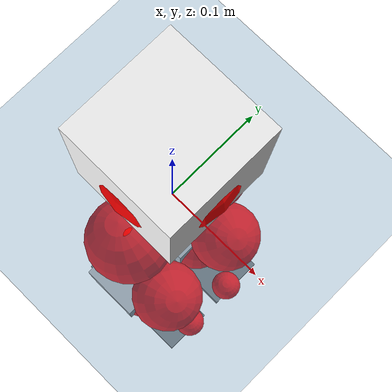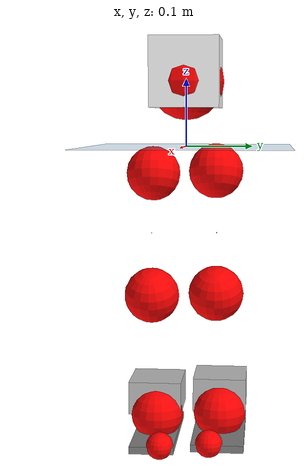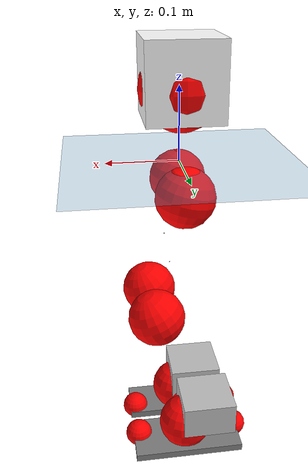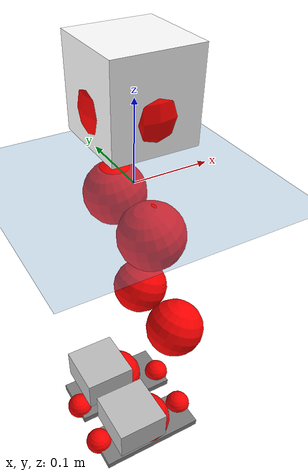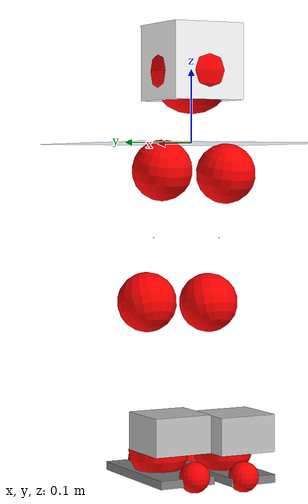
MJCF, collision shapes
<mujoco model="pi_12dof_release_v1">
  <compiler angle="radian" assetdir="assets" balanceinertia="true" inertiafromgeom="false"/>

  <option timestep="0.005" density="1.2" viscosity="2e-05"/>

  <size nkey="1"/>

  <visual>
    <quality shadowsize="8192"/>
    <map shadowclip="0.5"/>
  </visual>

  <default>
    <default class="/">
      <joint armature="0.01" damping="0.01" frictionloss="0.01"/>
      <geom contype="0" conaffinity="0" group="1" solref="-1000 -80"/>
      <site size="0.01 0.005 0.005" group="5"/>
      <general forcelimited="true" biastype="affine" gainprm="20" biasprm="0 -20 -0.5"/>
      <default class="foot">
        <geom size="0.0845 0.036 0.005" type="box" condim="6" group="4" priority="1" friction="0.9 0.2 0.2" solimp="0.015 1 0.005"/>
      </default>
      <default class="reward_collision_sphere">
        <geom group="5" rgba="1 0 0 1"/>
      </default>
    </default>
  </default>

  <asset>
    <texture type="skybox" colorspace="auto" name="//unnamed_texture_0" builtin="gradient" rgb1="0.95 0.95 0.95" rgb2="0.95 0.95 0.95" width="100" height="600"/>
    <texture type="2d" colorspace="auto" name="texplane" builtin="checker" rgb1="0.345 0.575 0.748" rgb2="0.345 0.575 0.748" markrgb="1 1 1" width="512" height="512"/>
    <material name="MatPlane" class="/" texture="texplane" texuniform="true" texrepeat="2 2" specular="0.9"/>
    <mesh name="baselink_1" class="/" file="baselink_1.STL"/>
    <mesh name="r_hip_pitch_link" class="/" file="r_hip_pitch_link.STL"/>
    <mesh name="r_hip_roll_link" class="/" file="r_hip_roll_link.STL"/>
    <mesh name="r_thigh_link" class="/" file="r_thigh_link.STL"/>
    <mesh name="r_calf_link" class="/" file="r_calf_link.STL"/>
    <mesh name="r_ankle_pitch_link" class="/" file="r_ankle_pitch_link.STL"/>
    <mesh name="r_ankle_roll_link" class="/" file="r_ankle_roll_link.STL"/>
    <mesh name="l_hip_pitch_link" class="/" file="l_hip_pitch_link.STL"/>
    <mesh name="l_hip_roll_link" class="/" file="l_hip_roll_link.STL"/>
    <mesh name="l_thigh_link" class="/" file="l_thigh_link.STL"/>
    <mesh name="l_calf_link" class="/" file="l_calf_link.STL"/>
    <mesh name="l_ankle_pitch_link" class="/" file="l_ankle_pitch_link.STL"/>
    <mesh name="l_ankle_roll_link" class="/" file="l_ankle_roll_link.STL"/>
  </asset>

  <worldbody>
    <geom name="floor" class="/" size="100 100 0.125" type="plane" group="0" material="MatPlane"/>
    <light name="toplight_shadow" class="/" pos="0 0 5" dir="0.0990148 0.0990148 -0.990148" type="directional" ambient="0.04 0.04 0.04" diffuse="0.55 0.55 0.55" specular="0.12 0.12 0.12"/>
    <light name="toplight_fill" class="/" pos="0 0 5" dir="0.0990148 0.0990148 -0.990148" type="directional" castshadow="false" ambient="0.04 0.04 0.04" diffuse="0.3 0.3 0.3" specular="0.08 0.08 0.08"/>
    <body name="trunk" pos="-0.00248235 0.000168889 0.00269307" quat="0.999999 -0.000793388 0.000965716 -0.000182494">
      <inertial pos="0.00593463 0.000566964 0.0511547" quat="0.693647 0.00703145 0.020149 0.719999" mass="2.29722" diaginertia="0.0191487 0.000788 0.0177261"/>
      <joint name="//unnamed_joint_0" type="free"/>
      <geom name="//unnamed_geom_1" class="/" type="mesh" density="0" rgba="1 1 1 1" mesh="baselink_1"/>
      <geom name="//unnamed_geom_2" class="/" size="0.0514469 0.0514469 0.0514469" pos="0 0 0.106366" type="box" rgba="1 1 1 1"/>
      <geom name="//unnamed_geom_3" class="reward_collision_sphere" size="0.0565916" pos="0 0 0.0930702"/>
      <site name="imu" class="/" pos="-0.00756071 0.000645978 0.00734052" size="0.0102894"/>
      <camera name="track" class="/" pos="0 -1.22557 0" quat="0.707107 0.707107 0 0" mode="trackcom"/>
      <camera name="ego_camera" class="/" pos="0.0858339 0 0.239323" quat="-0.5 -0.5 0.5 0.5"/>
      <body name="r_hip_pitch_link" pos="-0.000295856 -0.0141736 -0.0457359" quat="0.992189 0.000113665 -0.12474 0.00012709">
        <inertial pos="0.00164649 -0.0349714 9.3259e-05" quat="-0.0181311 0.705429 -0.0264389 0.708056" mass="0.430806" diaginertia="0.000218971 8.79753e-06 0.000360446"/>
        <joint name="r_hip_pitch_joint" class="/" pos="0 0 0" axis="-0.00334413 -0.999994 0.0013002" range="-1.73614 1.29035" armature="0.010521" damping="0.0138414" frictionloss="0.00895211"/>
        <geom name="//unnamed_geom_4" class="/" type="mesh" density="0" rgba="0.75294 0.75294 0.75294 1" mesh="r_hip_pitch_link"/>
        <geom name="//unnamed_geom_5" class="/" size="0.000514469 0.000514469 0.000514469" type="box" rgba="0.75294 0.75294 0.75294 1"/>
        <body name="r_hip_roll_link" pos="-0.00187699 -0.036688 0.0020727" quat="1 2.19797e-05 0.000537976 3.29982e-05">
          <inertial pos="-0.000877198 -3.40078e-05 -0.0794446" quat="0.707197 -0.0797302 -0.0831655 0.697567" mass="0.415508" diaginertia="0.000649363 2.46879e-05 0.000548676"/>
          <joint name="r_hip_roll_joint" class="/" pos="0 0 0" axis="-0.999991 0.00375808 0.00208912" range="-0.0980933 0.491125" armature="0.00950946" damping="0.0190703" frictionloss="0.00932966"/>
          <geom name="//unnamed_geom_6" class="/" type="mesh" density="0" rgba="0.75294 0.75294 0.75294 1" mesh="r_hip_roll_link"/>
          <geom name="//unnamed_geom_7" class="/" size="0.000514469 0.000514469 0.000514469" type="box" rgba="0.75294 0.75294 0.75294 1"/>
          <geom name="//unnamed_geom_8" class="reward_collision_sphere" size="0.0411575"/>
          <body name="r_thigh_link" pos="-0.00210791 -0.000773632 -0.0912294" quat="0.999999 0.000725903 -0.000614164 -0.000721344">
            <inertial pos="-0.000455339 0.00360778 -0.0657177" quat="0.735681 0.677316 -1.02923e-05 0.00397937" mass="0.11913" diaginertia="0.000240231 8.05248e-06 0.000241513"/>
            <joint name="r_thigh_joint" class="/" pos="0 0 0" axis="0.0024234 0.00234382 -0.999994" stiffness="0.00493508" range="-0.32105 0.539977" armature="0.0093409" damping="0" frictionloss="0.011479"/>
            <geom name="//unnamed_geom_9" class="/" type="mesh" density="0" rgba="0.75294 0.75294 0.75294 1" mesh="r_thigh_link"/>
            <geom name="//unnamed_geom_10" class="/" size="0.000514469 0.000514469 0.000514469" type="box" rgba="0.75294 0.75294 0.75294 1"/>
            <body name="r_calf_link" pos="0.00198326 0.00311746 -0.0948296" quat="0.947735 -0.000192064 0.319058 -2.69773e-05">
              <inertial pos="-0.00202763 0.00265291 -0.0942485" quat="0.999853 -0.00270684 -0.00202834 0.0168182" mass="0.903098" diaginertia="0.00703717 0.000303419 0.00073449"/>
              <joint name="r_calf_joint" class="/" pos="0 0 0" axis="-0.00380289 -0.999993 0.000353945" stiffness="0.00741915" range="-1.65209 0.700273" armature="0.00894886" damping="0" frictionloss="0.0103991"/>
              <geom name="//unnamed_geom_11" class="/" type="mesh" density="0" rgba="0.75294 0.75294 0.75294 1" mesh="r_calf_link"/>
              <geom name="//unnamed_geom_12" class="/" size="0.000514469 0.000514469 0.000514469" type="box" rgba="0.75294 0.75294 0.75294 1"/>
              <geom name="//unnamed_geom_13" class="reward_collision_sphere" size="0.0411575"/>
              <body name="r_ankle_pitch_link" pos="0.00143386 -0.00110846 -0.185871" quat="0.980058 -5.50423e-05 -0.198711 -9.97964e-05">
                <inertial pos="0.00389734 -1.63481e-06 -0.00217554" quat="0.0014361 0.700918 -0.00557216 0.713219" mass="0.187759" diaginertia="0.000577423 1.87303e-05 0.000476109"/>
                <joint name="r_ankle_pitch_joint" class="/" pos="0 0 0" axis="0.00343236 -0.999981 0.00515436" range="-1.3127 0.528921" armature="0.0111322" damping="0.00860027" frictionloss="0.00998742"/>
                <geom name="//unnamed_geom_14" class="/" type="mesh" density="0" rgba="0.75294 0.75294 0.75294 1" mesh="r_ankle_pitch_link"/>
                <geom name="//unnamed_geom_15" class="/" size="0.0401286 0.0411575 0.0257234" type="box" rgba="0.75294 0.75294 0.75294 1"/>
                <body name="r_ankle_roll_link" pos="0.0844711 0.00270908 -9.19122e-08" quat="1 0.000607672 0.000594029 0.000391708">
                  <inertial pos="-0.0278544 0.00028567 -0.0182362" quat="0.554796 0.440073 0.436159 0.55525" mass="0.58107" diaginertia="0.00230503 8.67252e-05 0.00117639"/>
                  <joint name="r_ankle_roll_joint" class="/" pos="0 0 0" axis="-0.999937 -0.00265397 -0.0108898" range="-0.12328 0.128988" armature="0.00934652" damping="0.00340091" frictionloss="0.0115818"/>
                  <geom name="//unnamed_geom_16" class="/" type="mesh" density="0" rgba="0.75294 0.75294 0.75294 1" mesh="r_ankle_roll_link"/>
                  <geom name="//unnamed_geom_17" class="/" type="mesh" rgba="0.75294 0.75294 0.75294 1" mesh="r_ankle_roll_link"/>
                  <geom name="right_foot" class="foot" size="0.0843512 0.0335224 0.00560395" pos="-0.058367 0 -0.0585013"/>
                  <geom name="//unnamed_geom_19" class="reward_collision_sphere" size="0.0411575" pos="-0.0572226 0 -0.0265915"/>
                  <geom name="//unnamed_geom_20" class="reward_collision_sphere" size="0.0205788" pos="0.0171668 0.0122557 -0.053183"/>
                  <geom name="//unnamed_geom_21" class="reward_collision_sphere" size="0.0205788" pos="-0.137334 0.0122557 -0.053183"/>
                  <site name="right_foot" class="foot" pos="-0.058367 0 -0.0585013" size="0.0102894"/>
                </body>
              </body>
            </body>
          </body>
        </body>
      </body>
      <body name="l_hip_pitch_link" pos="-0.00117707 0.0133376 -0.0425287" quat="0.992188 3.2784e-05 -0.124753 8.37564e-05">
        <inertial pos="0.00111858 0.0342519 0.00186178" quat="-0.0384706 0.705145 0.0286776 0.707438" mass="0.4153" diaginertia="0.000235754 8.62602e-06 0.000397914"/>
        <joint name="l_hip_pitch_joint" class="/" pos="0 0 0" axis="-0.000700837 0.999983 -0.00578285" range="-1.20624 1.74403" armature="0.009987" damping="0.0192406" frictionloss="0.00959631"/>
        <geom name="//unnamed_geom_22" class="/" type="mesh" density="0" rgba="0.75294 0.75294 0.75294 1" mesh="l_hip_pitch_link"/>
        <geom name="//unnamed_geom_23" class="/" size="0.000514469 0.000514469 0.000514469" type="box" rgba="0.75294 0.75294 0.75294 1"/>
        <body name="l_hip_roll_link" pos="0.00262504 0.0318651 0.00231766" quat="0.999999 -0.00027337 0.000742575 0.00102194">
          <inertial pos="0.000829026 0.00272934 -0.0787951" quat="0.701766 -0.0748539 -0.0754709 0.704433" mass="0.403792" diaginertia="0.000666973 2.39879e-05 0.000544411"/>
          <joint name="l_hip_roll_joint" class="/" pos="0 0 0" axis="-0.999858 0.0163958 -0.00386874" stiffness="0.00104422" range="-0.447839 0.0662857" armature="0.00895888" damping="0.00986262" frictionloss="0.00925857"/>
          <geom name="//unnamed_geom_24" class="/" type="mesh" density="0" rgba="0.75294 0.75294 0.75294 1" mesh="l_hip_roll_link"/>
          <geom name="//unnamed_geom_25" class="/" size="0.000514469 0.000514469 0.000514469" type="box" rgba="0.75294 0.75294 0.75294 1"/>
          <geom name="//unnamed_geom_26" class="reward_collision_sphere" size="0.0411575"/>
          <body name="l_thigh_link" pos="-0.00089995 0.0022543 -0.0940968" quat="1 0.000218507 -0.000175972 3.39045e-05">
            <inertial pos="0.00241941 -0.00160478 -0.0661491" quat="0.676623 0.736286 -0.00794343 0.00096812" mass="0.11708" diaginertia="0.000231498 7.7903e-06 0.000238438"/>
            <joint name="l_thigh_joint" class="/" pos="0 0 0" axis="0.000739169 1.8609e-05 -1" stiffness="0.00190265" range="-0.56488 0.262344" armature="0.0115628" damping="0.00183618" frictionloss="0.0098187"/>
            <geom name="//unnamed_geom_27" class="/" type="mesh" density="0" rgba="0.75294 0.75294 0.75294 1" mesh="l_thigh_link"/>
            <geom name="//unnamed_geom_28" class="/" size="0.000514469 0.000514469 0.000514469" type="box" rgba="0.75294 0.75294 0.75294 1"/>
            <body name="l_calf_link" pos="-0.00342072 0.000819609 -0.0911627" quat="0.947766 7.12601e-05 0.318966 0.000393028">
              <inertial pos="-0.00163537 0.00383124 -0.0906631" quat="0.99993 -0.00900139 0.00246971 -0.0072421" mass="0.916882" diaginertia="0.0071867 0.000309599 0.000746893"/>
              <joint name="l_calf_joint" class="/" pos="0 0 0" axis="0.000537613 1 4.54963e-05" stiffness="0.0120441" range="-0.637958 1.70704" armature="0.00982091" damping="0.0064232" frictionloss="0.0116719"/>
              <geom name="//unnamed_geom_29" class="/" type="mesh" density="0" rgba="0.75294 0.75294 0.75294 1" mesh="l_calf_link"/>
              <geom name="//unnamed_geom_30" class="/" size="0.000514469 0.000514469 0.000514469" type="box" rgba="0.75294 0.75294 0.75294 1"/>
              <geom name="//unnamed_geom_31" class="reward_collision_sphere" size="0.0411575"/>
              <body name="l_ankle_pitch_link" pos="-0.00259132 0.00385022 -0.184885" quat="0.980072 0.000119857 -0.198641 5.22611e-06">
                <inertial pos="0.00478582 0.0013701 0.00197344" quat="-0.00104885 0.707313 0.00229466 0.706896" mass="0.186203" diaginertia="0.000587383 1.87013e-05 0.000480546"/>
                <joint name="l_ankle_pitch_joint" class="/" pos="0 0 0" axis="-0.00243124 0.999991 0.00336167" stiffness="0.00240387" range="-0.552209 1.27367" armature="0.00959068" damping="0.0114147" frictionloss="0.0116276"/>
                <geom name="//unnamed_geom_32" class="/" type="mesh" density="0" rgba="0.75294 0.75294 0.75294 1" mesh="l_ankle_pitch_link"/>
                <geom name="//unnamed_geom_33" class="/" size="0.0401286 0.0411575 0.0257234" type="box" rgba="0.75294 0.75294 0.75294 1"/>
                <body name="l_ankle_roll_link" pos="0.089329 0.000289923 -0.000931574" quat="1 0.000309742 -0.000526331 -0.000549641">
                  <inertial pos="-0.0276381 -0.00295078 -0.0171399" quat="0.561688 0.429518 0.434676 0.557743" mass="0.553864" diaginertia="0.00217982 8.89756e-05 0.00114517"/>
                  <joint name="l_ankle_roll_joint" class="/" pos="0 0 0" axis="-0.999998 0.00139043 -0.00168217" stiffness="0.0080568" range="-0.161353 0.128841" armature="0.0104164" damping="0" frictionloss="0.0115836"/>
                  <geom name="//unnamed_geom_34" class="/" type="mesh" density="0" rgba="0.75294 0.75294 0.75294 1" mesh="l_ankle_roll_link"/>
                  <geom name="//unnamed_geom_35" class="/" type="mesh" rgba="0.75294 0.75294 0.75294 1" mesh="l_ankle_roll_link"/>
                  <geom name="left_foot" class="foot" size="0.0836423 0.0397859 0.00561981" pos="-0.058367 0 -0.0585013"/>
                  <geom name="//unnamed_geom_37" class="reward_collision_sphere" size="0.0411575" pos="-0.0572226 0 -0.0265915"/>
                  <geom name="//unnamed_geom_38" class="reward_collision_sphere" size="0.0205788" pos="0.0171668 -0.0122557 -0.053183"/>
                  <geom name="//unnamed_geom_39" class="reward_collision_sphere" size="0.0205788" pos="-0.137334 -0.0122557 -0.053183"/>
                  <site name="left_foot" class="foot" pos="-0.058367 0 -0.0585013" size="0.0102894"/>
                </body>
              </body>
            </body>
          </body>
        </body>
      </body>
    </body>
  </worldbody>

  <contact>
    <pair class="/" geom1="floor" geom2="right_foot" name="//unnamed_contact_1"/>
    <pair class="/" geom1="floor" geom2="left_foot" name="//unnamed_contact_0"/>
  </contact>

  <actuator>
    <general name="r_hip_pitch_joint" class="/" joint="r_hip_pitch_joint" forcerange="-21.7924 21.7924" gainprm="22.3317" biasprm="0 -22.3317 -0.501452"/>
    <general name="r_hip_roll_joint" class="/" joint="r_hip_roll_joint" forcerange="-21.742 21.742" gainprm="22.3317" biasprm="0 -22.3317 -0.501452"/>
    <general name="r_thigh_joint" class="/" joint="r_thigh_joint" forcerange="-21.8092 21.8092" gainprm="22.3317" biasprm="0 -22.3317 -0.501452"/>
    <general name="r_calf_joint" class="/" joint="r_calf_joint" forcerange="-20.5382 20.5382" gainprm="22.3317" biasprm="0 -22.3317 -0.501452"/>
    <general name="r_ankle_pitch_joint" class="/" joint="r_ankle_pitch_joint" forcerange="-22.9144 22.9144" gainprm="22.3317" biasprm="0 -22.3317 -0.501452"/>
    <general name="r_ankle_roll_joint" class="/" joint="r_ankle_roll_joint" forcerange="-20.8812 20.8812" gainprm="22.3317" biasprm="0 -22.3317 -0.501452"/>
    <general name="l_hip_pitch_joint" class="/" joint="l_hip_pitch_joint" forcerange="-21.2771 21.2771" gainprm="22.3317" biasprm="0 -22.3317 -0.501452"/>
    <general name="l_hip_roll_joint" class="/" joint="l_hip_roll_joint" forcerange="-23.2106 23.2106" gainprm="22.3317" biasprm="0 -22.3317 -0.501452"/>
    <general name="l_thigh_joint" class="/" joint="l_thigh_joint" forcerange="-19.4011 19.4011" gainprm="22.3317" biasprm="0 -22.3317 -0.501452"/>
    <general name="l_calf_joint" class="/" joint="l_calf_joint" forcerange="-20.8744 20.8744" gainprm="22.3317" biasprm="0 -22.3317 -0.501452"/>
    <general name="l_ankle_pitch_joint" class="/" joint="l_ankle_pitch_joint" forcerange="-22.4463 22.4463" gainprm="22.3317" biasprm="0 -22.3317 -0.501452"/>
    <general name="l_ankle_roll_joint" class="/" joint="l_ankle_roll_joint" forcerange="-19.8296 19.8296" gainprm="22.3317" biasprm="0 -22.3317 -0.501452"/>
  </actuator>

  <sensor>
    <gyro site="imu" name="imu_angular_velocity"/>
    <velocimeter site="imu" name="imu_linear_velocity"/>
    <framelinvel objtype="site" objname="left_foot" name="left_foot_global_linear_velocity"/>
    <framelinvel objtype="site" objname="right_foot" name="right_foot_global_linear_velocity"/>
  </sensor>

  <keyframe>
    <key name="home" qpos="0 0 0.291 1 0 0 0 0.4 0 0 -0.8 0.4 0 -0.4 0 0 0.8 -0.4 0"/>
  </keyframe>
</mujoco>
